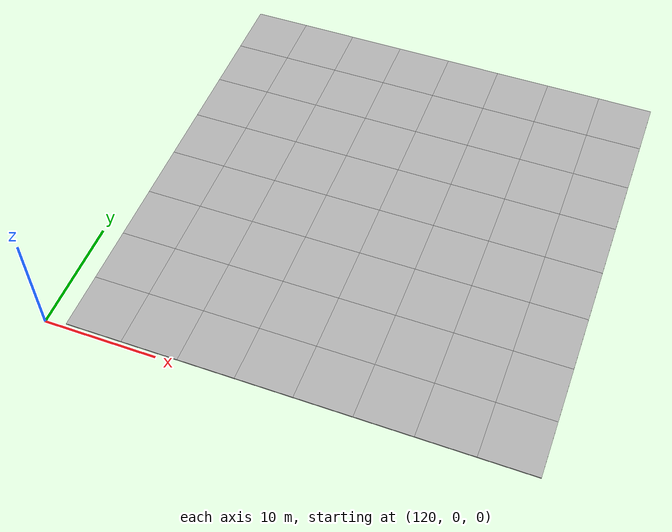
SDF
<sdf version="1.7">
 <world name="default">
  <model name="mud_plane_80x80_6">
   <model name="mud_plane_40x40_0">
    <model name="mud_plane_20x20">
     <model name="mud_plane">
      <static>1</static>
      <link name="link">
       <collision name="collision"><geometry><box><size>10 10 0.1</size></box></geometry></collision>
       <visual name="visual_1">
        <pose>-2.5 2.5 -0.05 0 -0 0</pose>
        <cast_shadows>0</cast_shadows>
        <geometry><box><size>5 5 0.1</size></box></geometry>
        <material>
         <script>
          <uri>model://mud_plane/materials/scripts</uri>
          <uri>model://mud_plane/materials/textures</uri>
          <name>vrc/mud</name>
         </script>
        </material>
       </visual>
       <visual name="visual_2">
        <pose>2.5 2.5 -0.05 0 -0 0</pose>
        <cast_shadows>0</cast_shadows>
        <geometry><box><size>5 5 0.1</size></box></geometry>
        <material>
         <script>
          <uri>model://mud_plane/materials/scripts</uri>
          <uri>model://mud_plane/materials/textures</uri>
          <name>vrc/mud</name>
         </script>
        </material>
       </visual>
       <visual name="visual_3">
        <pose>2.5 -2.5 -0.05 0 -0 0</pose>
        <cast_shadows>0</cast_shadows>
        <geometry><box><size>5 5 0.1</size></box></geometry>
        <material>
         <script>
          <uri>model://mud_plane/materials/scripts</uri>
          <uri>model://mud_plane/materials/textures</uri>
          <name>vrc/mud</name>
         </script>
        </material>
       </visual>
       <visual name="visual_4">
        <pose>-2.5 -2.5 -0.05 0 -0 0</pose>
        <cast_shadows>0</cast_shadows>
        <geometry><box><size>5 5 0.1</size></box></geometry>
        <material>
         <script>
          <uri>model://mud_plane/materials/scripts</uri>
          <uri>model://mud_plane/materials/textures</uri>
          <name>vrc/mud</name>
         </script>
        </material>
       </visual>
      </link>
      <pose>-4.99986 -4.99991 0 0 -0 0</pose>
     </model>
     <model name="mud_plane_0">
      <static>1</static>
      <link name="link">
       <collision name="collision"><geometry><box><size>10 10 0.1</size></box></geometry></collision>
       <visual name="visual_1">
        <pose>-2.5 2.5 -0.05 0 -0 0</pose>
        <cast_shadows>0</cast_shadows>
        <geometry><box><size>5 5 0.1</size></box></geometry>
        <material>
         <script>
          <uri>model://mud_plane/materials/scripts</uri>
          <uri>model://mud_plane/materials/textures</uri>
          <name>vrc/mud</name>
         </script>
        </material>
       </visual>
       <visual name="visual_2">
        <pose>2.5 2.5 -0.05 0 -0 0</pose>
        <cast_shadows>0</cast_shadows>
        <geometry><box><size>5 5 0.1</size></box></geometry>
        <material>
         <script>
          <uri>model://mud_plane/materials/scripts</uri>
          <uri>model://mud_plane/materials/textures</uri>
          <name>vrc/mud</name>
         </script>
        </material>
       </visual>
       <visual name="visual_3">
        <pose>2.5 -2.5 -0.05 0 -0 0</pose>
        <cast_shadows>0</cast_shadows>
        <geometry><box><size>5 5 0.1</size></box></geometry>
        <material>
         <script>
          <uri>model://mud_plane/materials/scripts</uri>
          <uri>model://mud_plane/materials/textures</uri>
          <name>vrc/mud</name>
         </script>
        </material>
       </visual>
       <visual name="visual_4">
        <pose>-2.5 -2.5 -0.05 0 -0 0</pose>
        <cast_shadows>0</cast_shadows>
        <geometry><box><size>5 5 0.1</size></box></geometry>
        <material>
         <script>
          <uri>model://mud_plane/materials/scripts</uri>
          <uri>model://mud_plane/materials/textures</uri>
          <name>vrc/mud</name>
         </script>
        </material>
       </visual>
      </link>
      <pose>-4.99946 4.99954 0 0 -0 0</pose>
     </model>
     <model name="mud_plane_1">
      <static>1</static>
      <link name="link">
       <collision name="collision"><geometry><box><size>10 10 0.1</size></box></geometry></collision>
       <visual name="visual_1">
        <pose>-2.5 2.5 -0.05 0 -0 0</pose>
        <cast_shadows>0</cast_shadows>
        <geometry><box><size>5 5 0.1</size></box></geometry>
        <material>
         <script>
          <uri>model://mud_plane/materials/scripts</uri>
          <uri>model://mud_plane/materials/textures</uri>
          <name>vrc/mud</name>
         </script>
        </material>
       </visual>
       <visual name="visual_2">
        <pose>2.5 2.5 -0.05 0 -0 0</pose>
        <cast_shadows>0</cast_shadows>
        <geometry><box><size>5 5 0.1</size></box></geometry>
        <material>
         <script>
          <uri>model://mud_plane/materials/scripts</uri>
          <uri>model://mud_plane/materials/textures</uri>
          <name>vrc/mud</name>
         </script>
        </material>
       </visual>
       <visual name="visual_3">
        <pose>2.5 -2.5 -0.05 0 -0 0</pose>
        <cast_shadows>0</cast_shadows>
        <geometry><box><size>5 5 0.1</size></box></geometry>
        <material>
         <script>
          <uri>model://mud_plane/materials/scripts</uri>
          <uri>model://mud_plane/materials/textures</uri>
          <name>vrc/mud</name>
         </script>
        </material>
       </visual>
       <visual name="visual_4">
        <pose>-2.5 -2.5 -0.05 0 -0 0</pose>
        <cast_shadows>0</cast_shadows>
        <geometry><box><size>5 5 0.1</size></box></geometry>
        <material>
         <script>
          <uri>model://mud_plane/materials/scripts</uri>
          <uri>model://mud_plane/materials/textures</uri>
          <name>vrc/mud</name>
         </script>
        </material>
       </visual>
      </link>
      <pose>4.99964 -4.99949 0 0 -0 0</pose>
     </model>
     <model name="mud_plane_2">
      <static>1</static>
      <link name="link">
       <collision name="collision"><geometry><box><size>10 10 0.1</size></box></geometry></collision>
       <visual name="visual_1">
        <pose>-2.5 2.5 -0.05 0 -0 0</pose>
        <cast_shadows>0</cast_shadows>
        <geometry><box><size>5 5 0.1</size></box></geometry>
        <material>
         <script>
          <uri>model://mud_plane/materials/scripts</uri>
          <uri>model://mud_plane/materials/textures</uri>
          <name>vrc/mud</name>
         </script>
        </material>
       </visual>
       <visual name="visual_2">
        <pose>2.5 2.5 -0.05 0 -0 0</pose>
        <cast_shadows>0</cast_shadows>
        <geometry><box><size>5 5 0.1</size></box></geometry>
        <material>
         <script>
          <uri>model://mud_plane/materials/scripts</uri>
          <uri>model://mud_plane/materials/textures</uri>
          <name>vrc/mud</name>
         </script>
        </material>
       </visual>
       <visual name="visual_3">
        <pose>2.5 -2.5 -0.05 0 -0 0</pose>
        <cast_shadows>0</cast_shadows>
        <geometry><box><size>5 5 0.1</size></box></geometry>
        <material>
         <script>
          <uri>model://mud_plane/materials/scripts</uri>
          <uri>model://mud_plane/materials/textures</uri>
          <name>vrc/mud</name>
         </script>
        </material>
       </visual>
       <visual name="visual_4">
        <pose>-2.5 -2.5 -0.05 0 -0 0</pose>
        <cast_shadows>0</cast_shadows>
        <geometry><box><size>5 5 0.1</size></box></geometry>
        <material>
         <script>
          <uri>model://mud_plane/materials/scripts</uri>
          <uri>model://mud_plane/materials/textures</uri>
          <name>vrc/mud</name>
         </script>
        </material>
       </visual>
      </link>
      <pose>4.99967 4.99986 0 0 -0 0</pose>
     </model>
     <static>0</static>
     <pose>-9.99895 9.99843 0 0 -0 0</pose>
    </model>
    <model name="mud_plane_20x20_0">
     <model name="mud_plane">
      <static>1</static>
      <link name="link">
       <collision name="collision"><geometry><box><size>10 10 0.1</size></box></geometry></collision>
       <visual name="visual_1">
        <pose>-2.5 2.5 -0.05 0 -0 0</pose>
        <cast_shadows>0</cast_shadows>
        <geometry><box><size>5 5 0.1</size></box></geometry>
        <material>
         <script>
          <uri>model://mud_plane/materials/scripts</uri>
          <uri>model://mud_plane/materials/textures</uri>
          <name>vrc/mud</name>
         </script>
        </material>
       </visual>
       <visual name="visual_2">
        <pose>2.5 2.5 -0.05 0 -0 0</pose>
        <cast_shadows>0</cast_shadows>
        <geometry><box><size>5 5 0.1</size></box></geometry>
        <material>
         <script>
          <uri>model://mud_plane/materials/scripts</uri>
          <uri>model://mud_plane/materials/textures</uri>
          <name>vrc/mud</name>
         </script>
        </material>
       </visual>
       <visual name="visual_3">
        <pose>2.5 -2.5 -0.05 0 -0 0</pose>
        <cast_shadows>0</cast_shadows>
        <geometry><box><size>5 5 0.1</size></box></geometry>
        <material>
         <script>
          <uri>model://mud_plane/materials/scripts</uri>
          <uri>model://mud_plane/materials/textures</uri>
          <name>vrc/mud</name>
         </script>
        </material>
       </visual>
       <visual name="visual_4">
        <pose>-2.5 -2.5 -0.05 0 -0 0</pose>
        <cast_shadows>0</cast_shadows>
        <geometry><box><size>5 5 0.1</size></box></geometry>
        <material>
         <script>
          <uri>model://mud_plane/materials/scripts</uri>
          <uri>model://mud_plane/materials/textures</uri>
          <name>vrc/mud</name>
         </script>
        </material>
       </visual>
      </link>
      <pose>-4.99986 -4.99991 0 0 -0 0</pose>
     </model>
     <model name="mud_plane_0">
      <static>1</static>
      <link name="link">
       <collision name="collision"><geometry><box><size>10 10 0.1</size></box></geometry></collision>
       <visual name="visual_1">
        <pose>-2.5 2.5 -0.05 0 -0 0</pose>
        <cast_shadows>0</cast_shadows>
        <geometry><box><size>5 5 0.1</size></box></geometry>
        <material>
         <script>
          <uri>model://mud_plane/materials/scripts</uri>
          <uri>model://mud_plane/materials/textures</uri>
          <name>vrc/mud</name>
         </script>
        </material>
       </visual>
       <visual name="visual_2">
        <pose>2.5 2.5 -0.05 0 -0 0</pose>
        <cast_shadows>0</cast_shadows>
        <geometry><box><size>5 5 0.1</size></box></geometry>
        <material>
         <script>
          <uri>model://mud_plane/materials/scripts</uri>
          <uri>model://mud_plane/materials/textures</uri>
          <name>vrc/mud</name>
         </script>
        </material>
       </visual>
       <visual name="visual_3">
        <pose>2.5 -2.5 -0.05 0 -0 0</pose>
        <cast_shadows>0</cast_shadows>
        <geometry><box><size>5 5 0.1</size></box></geometry>
        <material>
         <script>
          <uri>model://mud_plane/materials/scripts</uri>
          <uri>model://mud_plane/materials/textures</uri>
          <name>vrc/mud</name>
         </script>
        </material>
       </visual>
       <visual name="visual_4">
        <pose>-2.5 -2.5 -0.05 0 -0 0</pose>
        <cast_shadows>0</cast_shadows>
        <geometry><box><size>5 5 0.1</size></box></geometry>
        <material>
         <script>
          <uri>model://mud_plane/materials/scripts</uri>
          <uri>model://mud_plane/materials/textures</uri>
          <name>vrc/mud</name>
         </script>
        </material>
       </visual>
      </link>
      <pose>-4.99946 4.99954 0 0 -0 0</pose>
     </model>
     <model name="mud_plane_1">
      <static>1</static>
      <link name="link">
       <collision name="collision"><geometry><box><size>10 10 0.1</size></box></geometry></collision>
       <visual name="visual_1">
        <pose>-2.5 2.5 -0.05 0 -0 0</pose>
        <cast_shadows>0</cast_shadows>
        <geometry><box><size>5 5 0.1</size></box></geometry>
        <material>
         <script>
          <uri>model://mud_plane/materials/scripts</uri>
          <uri>model://mud_plane/materials/textures</uri>
          <name>vrc/mud</name>
         </script>
        </material>
       </visual>
       <visual name="visual_2">
        <pose>2.5 2.5 -0.05 0 -0 0</pose>
        <cast_shadows>0</cast_shadows>
        <geometry><box><size>5 5 0.1</size></box></geometry>
        <material>
         <script>
          <uri>model://mud_plane/materials/scripts</uri>
          <uri>model://mud_plane/materials/textures</uri>
          <name>vrc/mud</name>
         </script>
        </material>
       </visual>
       <visual name="visual_3">
        <pose>2.5 -2.5 -0.05 0 -0 0</pose>
        <cast_shadows>0</cast_shadows>
        <geometry><box><size>5 5 0.1</size></box></geometry>
        <material>
         <script>
          <uri>model://mud_plane/materials/scripts</uri>
          <uri>model://mud_plane/materials/textures</uri>
          <name>vrc/mud</name>
         </script>
        </material>
       </visual>
       <visual name="visual_4">
        <pose>-2.5 -2.5 -0.05 0 -0 0</pose>
        <cast_shadows>0</cast_shadows>
        <geometry><box><size>5 5 0.1</size></box></geometry>
        <material>
         <script>
          <uri>model://mud_plane/materials/scripts</uri>
          <uri>model://mud_plane/materials/textures</uri>
          <name>vrc/mud</name>
         </script>
        </material>
       </visual>
      </link>
      <pose>4.99964 -4.99949 0 0 -0 0</pose>
     </model>
     <model name="mud_plane_2">
      <static>1</static>
      <link name="link">
       <collision name="collision"><geometry><box><size>10 10 0.1</size></box></geometry></collision>
       <visual name="visual_1">
        <pose>-2.5 2.5 -0.05 0 -0 0</pose>
        <cast_shadows>0</cast_shadows>
        <geometry><box><size>5 5 0.1</size></box></geometry>
        <material>
         <script>
          <uri>model://mud_plane/materials/scripts</uri>
          <uri>model://mud_plane/materials/textures</uri>
          <name>vrc/mud</name>
         </script>
        </material>
       </visual>
       <visual name="visual_2">
        <pose>2.5 2.5 -0.05 0 -0 0</pose>
        <cast_shadows>0</cast_shadows>
        <geometry><box><size>5 5 0.1</size></box></geometry>
        <material>
         <script>
          <uri>model://mud_plane/materials/scripts</uri>
          <uri>model://mud_plane/materials/textures</uri>
          <name>vrc/mud</name>
         </script>
        </material>
       </visual>
       <visual name="visual_3">
        <pose>2.5 -2.5 -0.05 0 -0 0</pose>
        <cast_shadows>0</cast_shadows>
        <geometry><box><size>5 5 0.1</size></box></geometry>
        <material>
         <script>
          <uri>model://mud_plane/materials/scripts</uri>
          <uri>model://mud_plane/materials/textures</uri>
          <name>vrc/mud</name>
         </script>
        </material>
       </visual>
       <visual name="visual_4">
        <pose>-2.5 -2.5 -0.05 0 -0 0</pose>
        <cast_shadows>0</cast_shadows>
        <geometry><box><size>5 5 0.1</size></box></geometry>
        <material>
         <script>
          <uri>model://mud_plane/materials/scripts</uri>
          <uri>model://mud_plane/materials/textures</uri>
          <name>vrc/mud</name>
         </script>
        </material>
       </visual>
      </link>
      <pose>4.99967 4.99986 0 0 -0 0</pose>
     </model>
     <static>0</static>
     <pose>9.99933 9.9997 0 0 -0 0</pose>
    </model>
    <model name="mud_plane_20x20_1">
     <model name="mud_plane">
      <static>1</static>
      <link name="link">
       <collision name="collision"><geometry><box><size>10 10 0.1</size></box></geometry></collision>
       <visual name="visual_1">
        <pose>-2.5 2.5 -0.05 0 -0 0</pose>
        <cast_shadows>0</cast_shadows>
        <geometry><box><size>5 5 0.1</size></box></geometry>
        <material>
         <script>
          <uri>model://mud_plane/materials/scripts</uri>
          <uri>model://mud_plane/materials/textures</uri>
          <name>vrc/mud</name>
         </script>
        </material>
       </visual>
       <visual name="visual_2">
        <pose>2.5 2.5 -0.05 0 -0 0</pose>
        <cast_shadows>0</cast_shadows>
        <geometry><box><size>5 5 0.1</size></box></geometry>
        <material>
         <script>
          <uri>model://mud_plane/materials/scripts</uri>
          <uri>model://mud_plane/materials/textures</uri>
          <name>vrc/mud</name>
         </script>
        </material>
       </visual>
       <visual name="visual_3">
        <pose>2.5 -2.5 -0.05 0 -0 0</pose>
        <cast_shadows>0</cast_shadows>
        <geometry><box><size>5 5 0.1</size></box></geometry>
        <material>
         <script>
          <uri>model://mud_plane/materials/scripts</uri>
          <uri>model://mud_plane/materials/textures</uri>
          <name>vrc/mud</name>
         </script>
        </material>
       </visual>
       <visual name="visual_4">
        <pose>-2.5 -2.5 -0.05 0 -0 0</pose>
        <cast_shadows>0</cast_shadows>
        <geometry><box><size>5 5 0.1</size></box></geometry>
        <material>
         <script>
          <uri>model://mud_plane/materials/scripts</uri>
          <uri>model://mud_plane/materials/textures</uri>
          <name>vrc/mud</name>
         </script>
        </material>
       </visual>
      </link>
      <pose>-4.99986 -4.99991 0 0 -0 0</pose>
     </model>
     <model name="mud_plane_0">
      <static>1</static>
      <link name="link">
       <collision name="collision"><geometry><box><size>10 10 0.1</size></box></geometry></collision>
       <visual name="visual_1">
        <pose>-2.5 2.5 -0.05 0 -0 0</pose>
        <cast_shadows>0</cast_shadows>
        <geometry><box><size>5 5 0.1</size></box></geometry>
        <material>
         <script>
          <uri>model://mud_plane/materials/scripts</uri>
          <uri>model://mud_plane/materials/textures</uri>
          <name>vrc/mud</name>
         </script>
        </material>
       </visual>
       <visual name="visual_2">
        <pose>2.5 2.5 -0.05 0 -0 0</pose>
        <cast_shadows>0</cast_shadows>
        <geometry><box><size>5 5 0.1</size></box></geometry>
        <material>
         <script>
          <uri>model://mud_plane/materials/scripts</uri>
          <uri>model://mud_plane/materials/textures</uri>
          <name>vrc/mud</name>
         </script>
        </material>
       </visual>
       <visual name="visual_3">
        <pose>2.5 -2.5 -0.05 0 -0 0</pose>
        <cast_shadows>0</cast_shadows>
        <geometry><box><size>5 5 0.1</size></box></geometry>
        <material>
         <script>
          <uri>model://mud_plane/materials/scripts</uri>
          <uri>model://mud_plane/materials/textures</uri>
          <name>vrc/mud</name>
         </script>
        </material>
       </visual>
       <visual name="visual_4">
        <pose>-2.5 -2.5 -0.05 0 -0 0</pose>
        <cast_shadows>0</cast_shadows>
        <geometry><box><size>5 5 0.1</size></box></geometry>
        <material>
         <script>
          <uri>model://mud_plane/materials/scripts</uri>
          <uri>model://mud_plane/materials/textures</uri>
          <name>vrc/mud</name>
         </script>
        </material>
       </visual>
      </link>
      <pose>-4.99946 4.99954 0 0 -0 0</pose>
     </model>
     <model name="mud_plane_1">
      <static>1</static>
      <link name="link">
       <collision name="collision"><geometry><box><size>10 10 0.1</size></box></geometry></collision>
       <visual name="visual_1">
        <pose>-2.5 2.5 -0.05 0 -0 0</pose>
        <cast_shadows>0</cast_shadows>
        <geometry><box><size>5 5 0.1</size></box></geometry>
        <material>
         <script>
          <uri>model://mud_plane/materials/scripts</uri>
          <uri>model://mud_plane/materials/textures</uri>
          <name>vrc/mud</name>
         </script>
        </material>
       </visual>
       <visual name="visual_2">
        <pose>2.5 2.5 -0.05 0 -0 0</pose>
        <cast_shadows>0</cast_shadows>
        <geometry><box><size>5 5 0.1</size></box></geometry>
        <material>
         <script>
          <uri>model://mud_plane/materials/scripts</uri>
          <uri>model://mud_plane/materials/textures</uri>
          <name>vrc/mud</name>
         </script>
        </material>
       </visual>
       <visual name="visual_3">
        <pose>2.5 -2.5 -0.05 0 -0 0</pose>
        <cast_shadows>0</cast_shadows>
        <geometry><box><size>5 5 0.1</size></box></geometry>
        <material>
         <script>
          <uri>model://mud_plane/materials/scripts</uri>
          <uri>model://mud_plane/materials/textures</uri>
          <name>vrc/mud</name>
         </script>
        </material>
       </visual>
       <visual name="visual_4">
        <pose>-2.5 -2.5 -0.05 0 -0 0</pose>
        <cast_shadows>0</cast_shadows>
        <geometry><box><size>5 5 0.1</size></box></geometry>
        <material>
         <script>
          <uri>model://mud_plane/materials/scripts</uri>
          <uri>model://mud_plane/materials/textures</uri>
          <name>vrc/mud</name>
         </script>
        </material>
       </visual>
      </link>
      <pose>4.99964 -4.99949 0 0 -0 0</pose>
     </model>
     <model name="mud_plane_2">
      <static>1</static>
      <link name="link">
       <collision name="collision"><geometry><box><size>10 10 0.1</size></box></geometry></collision>
       <visual name="visual_1">
        <pose>-2.5 2.5 -0.05 0 -0 0</pose>
        <cast_shadows>0</cast_shadows>
        <geometry><box><size>5 5 0.1</size></box></geometry>
        <material>
         <script>
          <uri>model://mud_plane/materials/scripts</uri>
          <uri>model://mud_plane/materials/textures</uri>
          <name>vrc/mud</name>
         </script>
        </material>
       </visual>
       <visual name="visual_2">
        <pose>2.5 2.5 -0.05 0 -0 0</pose>
        <cast_shadows>0</cast_shadows>
        <geometry><box><size>5 5 0.1</size></box></geometry>
        <material>
         <script>
          <uri>model://mud_plane/materials/scripts</uri>
          <uri>model://mud_plane/materials/textures</uri>
          <name>vrc/mud</name>
         </script>
        </material>
       </visual>
       <visual name="visual_3">
        <pose>2.5 -2.5 -0.05 0 -0 0</pose>
        <cast_shadows>0</cast_shadows>
        <geometry><box><size>5 5 0.1</size></box></geometry>
        <material>
         <script>
          <uri>model://mud_plane/materials/scripts</uri>
          <uri>model://mud_plane/materials/textures</uri>
          <name>vrc/mud</name>
         </script>
        </material>
       </visual>
       <visual name="visual_4">
        <pose>-2.5 -2.5 -0.05 0 -0 0</pose>
        <cast_shadows>0</cast_shadows>
        <geometry><box><size>5 5 0.1</size></box></geometry>
        <material>
         <script>
          <uri>model://mud_plane/materials/scripts</uri>
          <uri>model://mud_plane/materials/textures</uri>
          <name>vrc/mud</name>
         </script>
        </material>
       </visual>
      </link>
      <pose>4.99967 4.99986 0 0 -0 0</pose>
     </model>
     <static>0</static>
     <pose>9.9993 -9.99877 0 0 -0 0</pose>
    </model>
    <model name="mud_plane_20x20_2">
     <model name="mud_plane">
      <static>1</static>
      <link name="link">
       <collision name="collision"><geometry><box><size>10 10 0.1</size></box></geometry></collision>
       <visual name="visual_1">
        <pose>-2.5 2.5 -0.05 0 -0 0</pose>
        <cast_shadows>0</cast_shadows>
        <geometry><box><size>5 5 0.1</size></box></geometry>
        <material>
         <script>
          <uri>model://mud_plane/materials/scripts</uri>
          <uri>model://mud_plane/materials/textures</uri>
          <name>vrc/mud</name>
         </script>
        </material>
       </visual>
       <visual name="visual_2">
        <pose>2.5 2.5 -0.05 0 -0 0</pose>
        <cast_shadows>0</cast_shadows>
        <geometry><box><size>5 5 0.1</size></box></geometry>
        <material>
         <script>
          <uri>model://mud_plane/materials/scripts</uri>
          <uri>model://mud_plane/materials/textures</uri>
          <name>vrc/mud</name>
         </script>
        </material>
       </visual>
       <visual name="visual_3">
        <pose>2.5 -2.5 -0.05 0 -0 0</pose>
        <cast_shadows>0</cast_shadows>
        <geometry><box><size>5 5 0.1</size></box></geometry>
        <material>
         <script>
          <uri>model://mud_plane/materials/scripts</uri>
          <uri>model://mud_plane/materials/textures</uri>
          <name>vrc/mud</name>
         </script>
        </material>
       </visual>
       <visual name="visual_4">
        <pose>-2.5 -2.5 -0.05 0 -0 0</pose>
        <cast_shadows>0</cast_shadows>
        <geometry><box><size>5 5 0.1</size></box></geometry>
        <material>
         <script>
          <uri>model://mud_plane/materials/scripts</uri>
          <uri>model://mud_plane/materials/textures</uri>
          <name>vrc/mud</name>
         </script>
        </material>
       </visual>
      </link>
      <pose>-4.99986 -4.99991 0 0 -0 0</pose>
     </model>
     <model name="mud_plane_0">
      <static>1</static>
      <link name="link">
       <collision name="collision"><geometry><box><size>10 10 0.1</size></box></geometry></collision>
       <visual name="visual_1">
        <pose>-2.5 2.5 -0.05 0 -0 0</pose>
        <cast_shadows>0</cast_shadows>
        <geometry><box><size>5 5 0.1</size></box></geometry>
        <material>
         <script>
          <uri>model://mud_plane/materials/scripts</uri>
          <uri>model://mud_plane/materials/textures</uri>
          <name>vrc/mud</name>
         </script>
        </material>
       </visual>
       <visual name="visual_2">
        <pose>2.5 2.5 -0.05 0 -0 0</pose>
        <cast_shadows>0</cast_shadows>
        <geometry><box><size>5 5 0.1</size></box></geometry>
        <material>
         <script>
          <uri>model://mud_plane/materials/scripts</uri>
          <uri>model://mud_plane/materials/textures</uri>
          <name>vrc/mud</name>
         </script>
        </material>
       </visual>
       <visual name="visual_3">
        <pose>2.5 -2.5 -0.05 0 -0 0</pose>
        <cast_shadows>0</cast_shadows>
        <geometry><box><size>5 5 0.1</size></box></geometry>
        <material>
         <script>
          <uri>model://mud_plane/materials/scripts</uri>
          <uri>model://mud_plane/materials/textures</uri>
          <name>vrc/mud</name>
         </script>
        </material>
       </visual>
       <visual name="visual_4">
        <pose>-2.5 -2.5 -0.05 0 -0 0</pose>
        <cast_shadows>0</cast_shadows>
        <geometry><box><size>5 5 0.1</size></box></geometry>
        <material>
         <script>
          <uri>model://mud_plane/materials/scripts</uri>
          <uri>model://mud_plane/materials/textures</uri>
          <name>vrc/mud</name>
         </script>
        </material>
       </visual>
      </link>
      <pose>-4.99946 4.99954 0 0 -0 0</pose>
     </model>
     <model name="mud_plane_1">
      <static>1</static>
      <link name="link">
       <collision name="collision"><geometry><box><size>10 10 0.1</size></box></geometry></collision>
       <visual name="visual_1">
        <pose>-2.5 2.5 -0.05 0 -0 0</pose>
        <cast_shadows>0</cast_shadows>
        <geometry><box><size>5 5 0.1</size></box></geometry>
        <material>
         <script>
          <uri>model://mud_plane/materials/scripts</uri>
          <uri>model://mud_plane/materials/textures</uri>
          <name>vrc/mud</name>
         </script>
        </material>
       </visual>
       <visual name="visual_2">
        <pose>2.5 2.5 -0.05 0 -0 0</pose>
        <cast_shadows>0</cast_shadows>
        <geometry><box><size>5 5 0.1</size></box></geometry>
        <material>
         <script>
          <uri>model://mud_plane/materials/scripts</uri>
          <uri>model://mud_plane/materials/textures</uri>
          <name>vrc/mud</name>
         </script>
        </material>
       </visual>
       <visual name="visual_3">
        <pose>2.5 -2.5 -0.05 0 -0 0</pose>
        <cast_shadows>0</cast_shadows>
        <geometry><box><size>5 5 0.1</size></box></geometry>
        <material>
         <script>
          <uri>model://mud_plane/materials/scripts</uri>
          <uri>model://mud_plane/materials/textures</uri>
          <name>vrc/mud</name>
         </script>
        </material>
       </visual>
       <visual name="visual_4">
        <pose>-2.5 -2.5 -0.05 0 -0 0</pose>
        <cast_shadows>0</cast_shadows>
        <geometry><box><size>5 5 0.1</size></box></geometry>
        <material>
         <script>
          <uri>model://mud_plane/materials/scripts</uri>
          <uri>model://mud_plane/materials/textures</uri>
          <name>vrc/mud</name>
         </script>
        </material>
       </visual>
      </link>
      <pose>4.99964 -4.99949 0 0 -0 0</pose>
     </model>
     <model name="mud_plane_2">
      <static>1</static>
      <link name="link">
       <collision name="collision"><geometry><box><size>10 10 0.1</size></box></geometry></collision>
       <visual name="visual_1">
        <pose>-2.5 2.5 -0.05 0 -0 0</pose>
        <cast_shadows>0</cast_shadows>
        <geometry><box><size>5 5 0.1</size></box></geometry>
        <material>
         <script>
          <uri>model://mud_plane/materials/scripts</uri>
          <uri>model://mud_plane/materials/textures</uri>
          <name>vrc/mud</name>
         </script>
        </material>
       </visual>
       <visual name="visual_2">
        <pose>2.5 2.5 -0.05 0 -0 0</pose>
        <cast_shadows>0</cast_shadows>
        <geometry><box><size>5 5 0.1</size></box></geometry>
        <material>
         <script>
          <uri>model://mud_plane/materials/scripts</uri>
          <uri>model://mud_plane/materials/textures</uri>
          <name>vrc/mud</name>
         </script>
        </material>
       </visual>
       <visual name="visual_3">
        <pose>2.5 -2.5 -0.05 0 -0 0</pose>
        <cast_shadows>0</cast_shadows>
        <geometry><box><size>5 5 0.1</size></box></geometry>
        <material>
         <script>
          <uri>model://mud_plane/materials/scripts</uri>
          <uri>model://mud_plane/materials/textures</uri>
          <name>vrc/mud</name>
         </script>
        </material>
       </visual>
       <visual name="visual_4">
        <pose>-2.5 -2.5 -0.05 0 -0 0</pose>
        <cast_shadows>0</cast_shadows>
        <geometry><box><size>5 5 0.1</size></box></geometry>
        <material>
         <script>
          <uri>model://mud_plane/materials/scripts</uri>
          <uri>model://mud_plane/materials/textures</uri>
          <name>vrc/mud</name>
         </script>
        </material>
       </visual>
      </link>
      <pose>4.99967 4.99986 0 0 -0 0</pose>
     </model>
     <static>0</static>
     <pose>-9.99969 -9.99935 0 0 -0 0</pose>
    </model>
    <static>0</static>
    <pose>19.9985 -19.998 0 0 -0 0</pose>
   </model>
   <static>0</static>
   <pose>121.689 40.3973 0 0 -0 0</pose>
  </model>
 </world>
</sdf>
